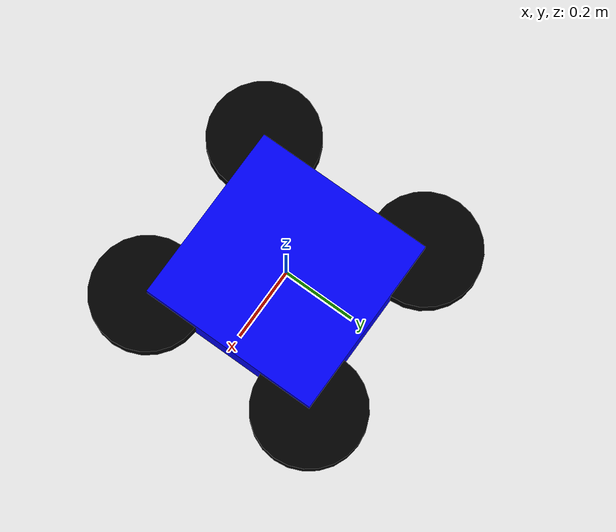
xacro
<?xml version="1.0"?>
<robot xmlns:xacro="http://www.ros.org/wiki/xacro" name="hummingbird">

  <!-- 定义属性 -->
  <xacro:property name="mass" value="0.98" />
  <xacro:property name="width" value="0.5" />
  <xacro:property name="height" value="0.1" />

  <!-- 颜色定义 -->
  <material name="blue">
    <color rgba="0.0 0.0 1.0 1.0"/>
  </material>

  <material name="black">
    <color rgba="0.0 0.0 0.0 1.0"/>
  </material>

  <!-- 机身 link -->
  <link name="base_link">
    <visual>
      <geometry>
        <box size="${width} ${width} ${height}"/>
      </geometry>
      <material name="blue"/>
    </visual>
    <collision>
      <geometry>
        <box size="${width} ${width} ${height}"/>
      </geometry>
    </collision>
    <inertial>
      <mass value="${mass}"/>
      <inertia ixx="0.01" ixy="0" ixz="0" iyy="0.01" iyz="0" izz="0.01"/>
    </inertial>
  </link>

  <!-- 四个旋翼（视觉用） -->
  <link name="rotor_1">
    <visual>
      <geometry>
        <cylinder radius="0.15" length="0.05"/>
      </geometry>
      <material name="black"/>
    </visual>
  </link>

  <link name="rotor_2">
    <visual>
      <geometry>
        <cylinder radius="0.15" length="0.05"/>
      </geometry>
      <material name="black"/>
    </visual>
  </link>

  <link name="rotor_3">
    <visual>
      <geometry>
        <cylinder radius="0.15" length="0.05"/>
      </geometry>
      <material name="black"/>
    </visual>
  </link>

  <link name="rotor_4">
    <visual>
      <geometry>
        <cylinder radius="0.15" length="0.05"/>
      </geometry>
      <material name="black"/>
    </visual>
  </link>

  <!-- 旋翼关节 -->
  <joint name="joint_1" type="fixed">
    <parent link="base_link"/>
    <child link="rotor_1"/>
    <origin xyz="${width/2} ${width/2} 0" rpy="0 0 0"/>
  </joint>

  <joint name="joint_2" type="fixed">
    <parent link="base_link"/>
    <child link="rotor_2"/>
    <origin xyz="${-width/2} ${width/2} 0" rpy="0 0 0"/>
  </joint>

  <joint name="joint_3" type="fixed">
    <parent link="base_link"/>
    <child link="rotor_3"/>
    <origin xyz="${width/2} ${-width/2} 0" rpy="0 0 0"/>
  </joint>

  <joint name="joint_4" type="fixed">
    <parent link="base_link"/>
    <child link="rotor_4"/>
    <origin xyz="${-width/2} ${-width/2} 0" rpy="0 0 0"/>
  </joint>

</robot>
